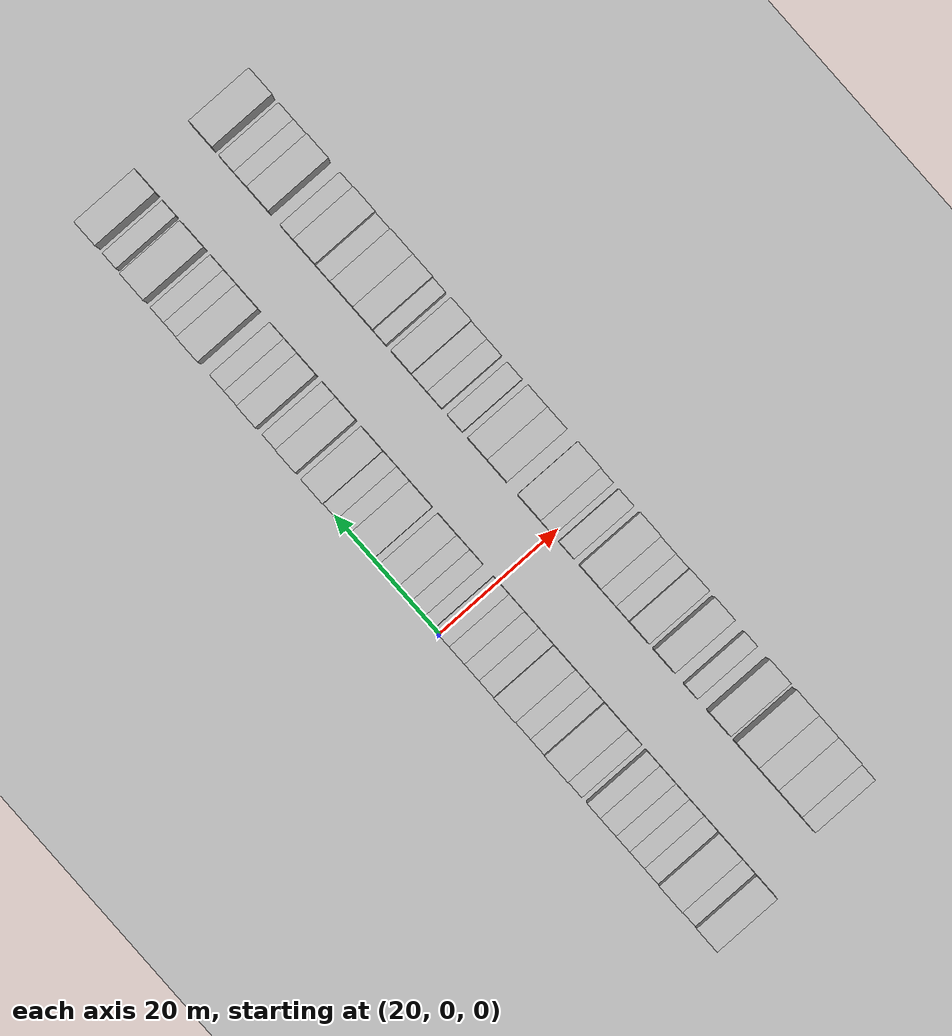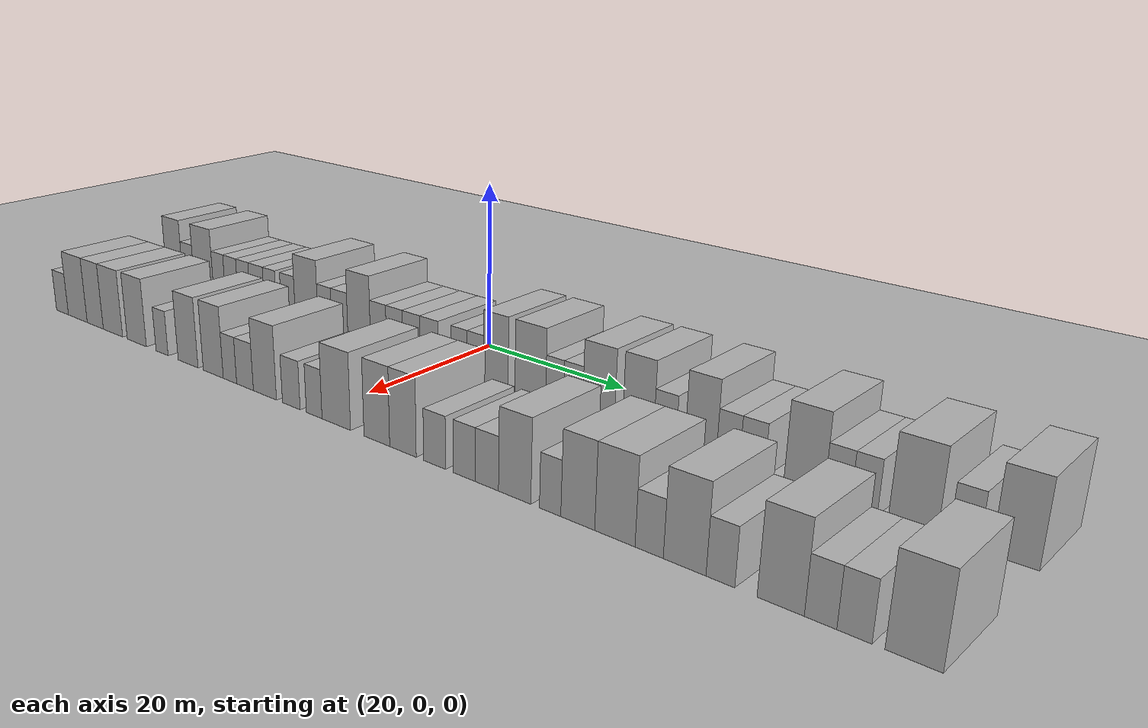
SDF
<sdf version="1.6">
 <world name="default">
  <include><name>ground_plane_1</name><uri>model://HANNAS_ground_plane</uri></include>
  <include>
   <name>ground_plane_2</name>
   <uri>model://HANNAS_ground_plane</uri>
   <pose>100 0 0  0 0 0</pose>
  </include>
  <model name="building_32">
   <static>1</static>
   <pose>25.0000 -50.4423 0 0.000000 0.000000 0.000000</pose>
   <link name="link">
    <pose>0 0 4.50 0 0 0</pose>
    <collision name="collision"><geometry><box><size>10.0000 3.9020 9.0000</size></box></geometry></collision>
    <visual name="visual">
     <cast_shadows>0</cast_shadows>
     <geometry><box><size>10.0000 3.9020 9.0000</size></box></geometry>
     <material>
      <script>
       <uri>model://HANNAS_wall/materials/scripts</uri>
       <uri>model://HANNAS_wall/materials/textures</uri>
       <name>vrc/HANNAS_wall</name>
      </script>
     </material>
    </visual>
   </link>
  </model>
  <model name="building_33">
   <static>1</static>
   <pose>25.0000 -47.1648 0 0.000000 0.000000 0.000000</pose>
   <link name="link">
    <pose>0 0 3.00 0 0 0</pose>
    <collision name="collision"><geometry><box><size>10.0000 2.6529 6.0000</size></box></geometry></collision>
    <visual name="visual">
     <cast_shadows>0</cast_shadows>
     <geometry><box><size>10.0000 2.6529 6.0000</size></box></geometry>
     <material>
      <script>
       <uri>model://HANNAS_wall/materials/scripts</uri>
       <uri>model://HANNAS_wall/materials/textures</uri>
       <name>vrc/HANNAS_wall</name>
      </script>
     </material>
    </visual>
   </link>
  </model>
  <model name="building_34">
   <static>1</static>
   <pose>25.0000 -43.6502 0 0.000000 0.000000 0.000000</pose>
   <link name="link">
    <pose>0 0 4.50 0 0 0</pose>
    <collision name="collision"><geometry><box><size>10.0000 4.3764 9.0000</size></box></geometry></collision>
    <visual name="visual">
     <cast_shadows>0</cast_shadows>
     <geometry><box><size>10.0000 4.3764 9.0000</size></box></geometry>
     <material>
      <script>
       <uri>model://HANNAS_wall/materials/scripts</uri>
       <uri>model://HANNAS_wall/materials/textures</uri>
       <name>vrc/HANNAS_wall</name>
      </script>
     </material>
    </visual>
   </link>
  </model>
  <model name="building_35">
   <static>1</static>
   <pose>25.0000 -40.1557 0 0.000000 0.000000 0.000000</pose>
   <link name="link">
    <pose>0 0 3.00 0 0 0</pose>
    <collision name="collision"><geometry><box><size>10.0000 2.6125 6.0000</size></box></geometry></collision>
    <visual name="visual">
     <cast_shadows>0</cast_shadows>
     <geometry><box><size>10.0000 2.6125 6.0000</size></box></geometry>
     <material>
      <script>
       <uri>model://HANNAS_wall/materials/scripts</uri>
       <uri>model://HANNAS_wall/materials/textures</uri>
       <name>vrc/HANNAS_wall</name>
      </script>
     </material>
    </visual>
   </link>
  </model>
  <model name="building_36">
   <static>1</static>
   <pose>25.0000 -37.4683 0 0.000000 0.000000 0.000000</pose>
   <link name="link">
    <pose>0 0 3.00 0 0 0</pose>
    <collision name="collision"><geometry><box><size>10.0000 2.7624 6.0000</size></box></geometry></collision>
    <visual name="visual">
     <cast_shadows>0</cast_shadows>
     <geometry><box><size>10.0000 2.7624 6.0000</size></box></geometry>
     <material>
      <script>
       <uri>model://HANNAS_wall/materials/scripts</uri>
       <uri>model://HANNAS_wall/materials/textures</uri>
       <name>vrc/HANNAS_wall</name>
      </script>
     </material>
    </visual>
   </link>
  </model>
  <model name="building_37">
   <static>1</static>
   <pose>25.0000 -34.7901 0 0.000000 0.000000 0.000000</pose>
   <link name="link">
    <pose>0 0 3.00 0 0 0</pose>
    <collision name="collision"><geometry><box><size>10.0000 2.5939 6.0000</size></box></geometry></collision>
    <visual name="visual">
     <cast_shadows>0</cast_shadows>
     <geometry><box><size>10.0000 2.5939 6.0000</size></box></geometry>
     <material>
      <script>
       <uri>model://HANNAS_wall/materials/scripts</uri>
       <uri>model://HANNAS_wall/materials/textures</uri>
       <name>vrc/HANNAS_wall</name>
      </script>
     </material>
    </visual>
   </link>
  </model>
  <model name="building_38">
   <static>1</static>
   <pose>25.0000 -31.9998 0 0.000000 0.000000 0.000000</pose>
   <link name="link">
    <pose>0 0 3.00 0 0 0</pose>
    <collision name="collision"><geometry><box><size>10.0000 2.9867 6.0000</size></box></geometry></collision>
    <visual name="visual">
     <cast_shadows>0</cast_shadows>
     <geometry><box><size>10.0000 2.9867 6.0000</size></box></geometry>
     <material>
      <script>
       <uri>model://HANNAS_wall/materials/scripts</uri>
       <uri>model://HANNAS_wall/materials/textures</uri>
       <name>vrc/HANNAS_wall</name>
      </script>
     </material>
    </visual>
   </link>
  </model>
  <model name="building_39">
   <static>1</static>
   <pose>25.0000 -29.2741 0 0.000000 0.000000 0.000000</pose>
   <link name="link">
    <pose>0 0 3.00 0 0 0</pose>
    <collision name="collision"><geometry><box><size>10.0000 2.4649 6.0000</size></box></geometry></collision>
    <visual name="visual">
     <cast_shadows>0</cast_shadows>
     <geometry><box><size>10.0000 2.4649 6.0000</size></box></geometry>
     <material>
      <script>
       <uri>model://HANNAS_wall/materials/scripts</uri>
       <uri>model://HANNAS_wall/materials/textures</uri>
       <name>vrc/HANNAS_wall</name>
      </script>
     </material>
    </visual>
   </link>
  </model>
  <model name="building_40">
   <static>1</static>
   <pose>25.0000 -25.6696 0 0.000000 0.000000 0.000000</pose>
   <link name="link">
    <pose>0 0 3.00 0 0 0</pose>
    <collision name="collision"><geometry><box><size>10.0000 2.7440 6.0000</size></box></geometry></collision>
    <visual name="visual">
     <cast_shadows>0</cast_shadows>
     <geometry><box><size>10.0000 2.7440 6.0000</size></box></geometry>
     <material>
      <script>
       <uri>model://HANNAS_wall/materials/scripts</uri>
       <uri>model://HANNAS_wall/materials/textures</uri>
       <name>vrc/HANNAS_wall</name>
      </script>
     </material>
    </visual>
   </link>
  </model>
  <model name="building_41">
   <static>1</static>
   <pose>25.0000 -22.1015 0 0.000000 0.000000 0.000000</pose>
   <link name="link">
    <pose>0 0 4.50 0 0 0</pose>
    <collision name="collision"><geometry><box><size>10.0000 4.3921 9.0000</size></box></geometry></collision>
    <visual name="visual">
     <cast_shadows>0</cast_shadows>
     <geometry><box><size>10.0000 4.3921 9.0000</size></box></geometry>
     <material>
      <script>
       <uri>model://HANNAS_wall/materials/scripts</uri>
       <uri>model://HANNAS_wall/materials/textures</uri>
       <name>vrc/HANNAS_wall</name>
      </script>
     </material>
    </visual>
   </link>
  </model>
  <model name="building_42">
   <static>1</static>
   <pose>25.0000 -18.6180 0 0.000000 0.000000 0.000000</pose>
   <link name="link">
    <pose>0 0 3.00 0 0 0</pose>
    <collision name="collision"><geometry><box><size>10.0000 2.5749 6.0000</size></box></geometry></collision>
    <visual name="visual">
     <cast_shadows>0</cast_shadows>
     <geometry><box><size>10.0000 2.5749 6.0000</size></box></geometry>
     <material>
      <script>
       <uri>model://HANNAS_wall/materials/scripts</uri>
       <uri>model://HANNAS_wall/materials/textures</uri>
       <name>vrc/HANNAS_wall</name>
      </script>
     </material>
    </visual>
   </link>
  </model>
  <model name="building_43">
   <static>1</static>
   <pose>25.0000 -15.8594 0 0.000000 0.000000 0.000000</pose>
   <link name="link">
    <pose>0 0 3.00 0 0 0</pose>
    <collision name="collision"><geometry><box><size>10.0000 2.9423 6.0000</size></box></geometry></collision>
    <visual name="visual">
     <cast_shadows>0</cast_shadows>
     <geometry><box><size>10.0000 2.9423 6.0000</size></box></geometry>
     <material>
      <script>
       <uri>model://HANNAS_wall/materials/scripts</uri>
       <uri>model://HANNAS_wall/materials/textures</uri>
       <name>vrc/HANNAS_wall</name>
      </script>
     </material>
    </visual>
   </link>
  </model>
  <model name="building_44">
   <static>1</static>
   <pose>25.0000 -12.3718 0 0.000000 0.000000 0.000000</pose>
   <link name="link">
    <pose>0 0 4.50 0 0 0</pose>
    <collision name="collision"><geometry><box><size>10.0000 4.0329 9.0000</size></box></geometry></collision>
    <visual name="visual">
     <cast_shadows>0</cast_shadows>
     <geometry><box><size>10.0000 4.0329 9.0000</size></box></geometry>
     <material>
      <script>
       <uri>model://HANNAS_wall/materials/scripts</uri>
       <uri>model://HANNAS_wall/materials/textures</uri>
       <name>vrc/HANNAS_wall</name>
      </script>
     </material>
    </visual>
   </link>
  </model>
  <model name="building_45">
   <static>1</static>
   <pose>25.0000 -8.9670 0 0.000000 0.000000 0.000000</pose>
   <link name="link">
    <pose>0 0 3.00 0 0 0</pose>
    <collision name="collision"><geometry><box><size>10.0000 2.7767 6.0000</size></box></geometry></collision>
    <visual name="visual">
     <cast_shadows>0</cast_shadows>
     <geometry><box><size>10.0000 2.7767 6.0000</size></box></geometry>
     <material>
      <script>
       <uri>model://HANNAS_wall/materials/scripts</uri>
       <uri>model://HANNAS_wall/materials/textures</uri>
       <name>vrc/HANNAS_wall</name>
      </script>
     </material>
    </visual>
   </link>
  </model>
  <model name="building_46">
   <static>1</static>
   <pose>25.0000 -6.2031 0 0.000000 0.000000 0.000000</pose>
   <link name="link">
    <pose>0 0 3.00 0 0 0</pose>
    <collision name="collision"><geometry><box><size>10.0000 2.7511 6.0000</size></box></geometry></collision>
    <visual name="visual">
     <cast_shadows>0</cast_shadows>
     <geometry><box><size>10.0000 2.7511 6.0000</size></box></geometry>
     <material>
      <script>
       <uri>model://HANNAS_wall/materials/scripts</uri>
       <uri>model://HANNAS_wall/materials/textures</uri>
       <name>vrc/HANNAS_wall</name>
      </script>
     </material>
    </visual>
   </link>
  </model>
  <model name="building_47">
   <static>1</static>
   <pose>25.0000 -3.3854 0 0.000000 0.000000 0.000000</pose>
   <link name="link">
    <pose>0 0 3.00 0 0 0</pose>
    <collision name="collision"><geometry><box><size>10.0000 2.8842 6.0000</size></box></geometry></collision>
    <visual name="visual">
     <cast_shadows>0</cast_shadows>
     <geometry><box><size>10.0000 2.8842 6.0000</size></box></geometry>
     <material>
      <script>
       <uri>model://HANNAS_wall/materials/scripts</uri>
       <uri>model://HANNAS_wall/materials/textures</uri>
       <name>vrc/HANNAS_wall</name>
      </script>
     </material>
    </visual>
   </link>
  </model>
  <model name="building_48">
   <static>1</static>
   <pose>25.0000 -0.4800 0 0.000000 0.000000 0.000000</pose>
   <link name="link">
    <pose>0 0 3.00 0 0 0</pose>
    <collision name="collision"><geometry><box><size>10.0000 2.9267 6.0000</size></box></geometry></collision>
    <visual name="visual">
     <cast_shadows>0</cast_shadows>
     <geometry><box><size>10.0000 2.9267 6.0000</size></box></geometry>
     <material>
      <script>
       <uri>model://HANNAS_wall/materials/scripts</uri>
       <uri>model://HANNAS_wall/materials/textures</uri>
       <name>vrc/HANNAS_wall</name>
      </script>
     </material>
    </visual>
   </link>
  </model>
  <model name="building_49">
   <static>1</static>
   <pose>25.0000 4.2375 0 0.000000 0.000000 0.000000</pose>
   <link name="link">
    <pose>0 0 3.00 0 0 0</pose>
    <collision name="collision"><geometry><box><size>10.0000 2.5082 6.0000</size></box></geometry></collision>
    <visual name="visual">
     <cast_shadows>0</cast_shadows>
     <geometry><box><size>10.0000 2.5082 6.0000</size></box></geometry>
     <material>
      <script>
       <uri>model://HANNAS_wall/materials/scripts</uri>
       <uri>model://HANNAS_wall/materials/textures</uri>
       <name>vrc/HANNAS_wall</name>
      </script>
     </material>
    </visual>
   </link>
  </model>
  <model name="building_50">
   <static>1</static>
   <pose>25.0000 6.7086 0 0.000000 0.000000 0.000000</pose>
   <link name="link">
    <pose>0 0 3.00 0 0 0</pose>
    <collision name="collision"><geometry><box><size>10.0000 2.4341 6.0000</size></box></geometry></collision>
    <visual name="visual">
     <cast_shadows>0</cast_shadows>
     <geometry><box><size>10.0000 2.4341 6.0000</size></box></geometry>
     <material>
      <script>
       <uri>model://HANNAS_wall/materials/scripts</uri>
       <uri>model://HANNAS_wall/materials/textures</uri>
       <name>vrc/HANNAS_wall</name>
      </script>
     </material>
    </visual>
   </link>
  </model>
  <model name="building_51">
   <static>1</static>
   <pose>25.0000 9.7487 0 0.000000 0.000000 0.000000</pose>
   <link name="link">
    <pose>0 0 4.50 0 0 0</pose>
    <collision name="collision"><geometry><box><size>10.0000 3.6459 9.0000</size></box></geometry></collision>
    <visual name="visual">
     <cast_shadows>0</cast_shadows>
     <geometry><box><size>10.0000 3.6459 9.0000</size></box></geometry>
     <material>
      <script>
       <uri>model://HANNAS_wall/materials/scripts</uri>
       <uri>model://HANNAS_wall/materials/textures</uri>
       <name>vrc/HANNAS_wall</name>
      </script>
     </material>
    </visual>
   </link>
  </model>
  <model name="building_52">
   <static>1</static>
   <pose>25.0000 14.7281 0 0.000000 0.000000 0.000000</pose>
   <link name="link">
    <pose>0 0 4.50 0 0 0</pose>
    <collision name="collision"><geometry><box><size>10.0000 4.3130 9.0000</size></box></geometry></collision>
    <visual name="visual">
     <cast_shadows>0</cast_shadows>
     <geometry><box><size>10.0000 4.3130 9.0000</size></box></geometry>
     <material>
      <script>
       <uri>model://HANNAS_wall/materials/scripts</uri>
       <uri>model://HANNAS_wall/materials/textures</uri>
       <name>vrc/HANNAS_wall</name>
      </script>
     </material>
    </visual>
   </link>
  </model>
  <model name="building_53">
   <static>1</static>
   <pose>25.0000 18.1000 0 0.000000 0.000000 0.000000</pose>
   <link name="link">
    <pose>0 0 3.00 0 0 0</pose>
    <collision name="collision"><geometry><box><size>10.0000 2.4307 6.0000</size></box></geometry></collision>
    <visual name="visual">
     <cast_shadows>0</cast_shadows>
     <geometry><box><size>10.0000 2.4307 6.0000</size></box></geometry>
     <material>
      <script>
       <uri>model://HANNAS_wall/materials/scripts</uri>
       <uri>model://HANNAS_wall/materials/textures</uri>
       <name>vrc/HANNAS_wall</name>
      </script>
     </material>
    </visual>
   </link>
  </model>
  <model name="building_54">
   <static>1</static>
   <pose>25.0000 20.5877 0 0.000000 0.000000 0.000000</pose>
   <link name="link">
    <pose>0 0 3.00 0 0 0</pose>
    <collision name="collision"><geometry><box><size>10.0000 2.5447 6.0000</size></box></geometry></collision>
    <visual name="visual">
     <cast_shadows>0</cast_shadows>
     <geometry><box><size>10.0000 2.5447 6.0000</size></box></geometry>
     <material>
      <script>
       <uri>model://HANNAS_wall/materials/scripts</uri>
       <uri>model://HANNAS_wall/materials/textures</uri>
       <name>vrc/HANNAS_wall</name>
      </script>
     </material>
    </visual>
   </link>
  </model>
  <model name="building_55">
   <static>1</static>
   <pose>25.0000 23.9229 0 0.000000 0.000000 0.000000</pose>
   <link name="link">
    <pose>0 0 4.50 0 0 0</pose>
    <collision name="collision"><geometry><box><size>10.0000 4.1257 9.0000</size></box></geometry></collision>
    <visual name="visual">
     <cast_shadows>0</cast_shadows>
     <geometry><box><size>10.0000 4.1257 9.0000</size></box></geometry>
     <material>
      <script>
       <uri>model://HANNAS_wall/materials/scripts</uri>
       <uri>model://HANNAS_wall/materials/textures</uri>
       <name>vrc/HANNAS_wall</name>
      </script>
     </material>
    </visual>
   </link>
  </model>
  <model name="building_56">
   <static>1</static>
   <pose>25.0000 28.8946 0 0.000000 0.000000 0.000000</pose>
   <link name="link">
    <pose>0 0 4.50 0 0 0</pose>
    <collision name="collision"><geometry><box><size>10.0000 3.8179 9.0000</size></box></geometry></collision>
    <visual name="visual">
     <cast_shadows>0</cast_shadows>
     <geometry><box><size>10.0000 3.8179 9.0000</size></box></geometry>
     <material>
      <script>
       <uri>model://HANNAS_wall/materials/scripts</uri>
       <uri>model://HANNAS_wall/materials/textures</uri>
       <name>vrc/HANNAS_wall</name>
      </script>
     </material>
    </visual>
   </link>
  </model>
  <model name="building_57">
   <static>1</static>
   <pose>25.0000 32.1456 0 0.000000 0.000000 0.000000</pose>
   <link name="link">
    <pose>0 0 3.00 0 0 0</pose>
    <collision name="collision"><geometry><box><size>10.0000 2.6839 6.0000</size></box></geometry></collision>
    <visual name="visual">
     <cast_shadows>0</cast_shadows>
     <geometry><box><size>10.0000 2.6839 6.0000</size></box></geometry>
     <material>
      <script>
       <uri>model://HANNAS_wall/materials/scripts</uri>
       <uri>model://HANNAS_wall/materials/textures</uri>
       <name>vrc/HANNAS_wall</name>
      </script>
     </material>
    </visual>
   </link>
  </model>
  <model name="building_58">
   <static>1</static>
   <pose>25.0000 36.2877 0 0.000000 0.000000 0.000000</pose>
   <link name="link">
    <pose>0 0 4.50 0 0 0</pose>
    <collision name="collision"><geometry><box><size>10.0000 3.6005 9.0000</size></box></geometry></collision>
    <visual name="visual">
     <cast_shadows>0</cast_shadows>
     <geometry><box><size>10.0000 3.6005 9.0000</size></box></geometry>
     <material>
      <script>
       <uri>model://HANNAS_wall/materials/scripts</uri>
       <uri>model://HANNAS_wall/materials/textures</uri>
       <name>vrc/HANNAS_wall</name>
      </script>
     </material>
    </visual>
   </link>
  </model>
  <model name="building_59">
   <static>1</static>
   <pose>25.0000 39.3707 0 0.000000 0.000000 0.000000</pose>
   <link name="link">
    <pose>0 0 3.00 0 0 0</pose>
    <collision name="collision"><geometry><box><size>10.0000 2.5655 6.0000</size></box></geometry></collision>
    <visual name="visual">
     <cast_shadows>0</cast_shadows>
     <geometry><box><size>10.0000 2.5655 6.0000</size></box></geometry>
     <material>
      <script>
       <uri>model://HANNAS_wall/materials/scripts</uri>
       <uri>model://HANNAS_wall/materials/textures</uri>
       <name>vrc/HANNAS_wall</name>
      </script>
     </material>
    </visual>
   </link>
  </model>
  <model name="building_60">
   <static>1</static>
   <pose>25.0000 42.0152 0 0.000000 0.000000 0.000000</pose>
   <link name="link">
    <pose>0 0 3.00 0 0 0</pose>
    <collision name="collision"><geometry><box><size>10.0000 2.7235 6.0000</size></box></geometry></collision>
    <visual name="visual">
     <cast_shadows>0</cast_shadows>
     <geometry><box><size>10.0000 2.7235 6.0000</size></box></geometry>
     <material>
      <script>
       <uri>model://HANNAS_wall/materials/scripts</uri>
       <uri>model://HANNAS_wall/materials/textures</uri>
       <name>vrc/HANNAS_wall</name>
      </script>
     </material>
    </visual>
   </link>
  </model>
  <model name="building_61">
   <static>1</static>
   <pose>25.0000 47.4285 0 0.000000 0.000000 0.000000</pose>
   <link name="link">
    <pose>0 0 4.50 0 0 0</pose>
    <collision name="collision"><geometry><box><size>10.0000 4.1031 9.0000</size></box></geometry></collision>
    <visual name="visual">
     <cast_shadows>0</cast_shadows>
     <geometry><box><size>10.0000 4.1031 9.0000</size></box></geometry>
     <material>
      <script>
       <uri>model://HANNAS_wall/materials/scripts</uri>
       <uri>model://HANNAS_wall/materials/textures</uri>
       <name>vrc/HANNAS_wall</name>
      </script>
     </material>
    </visual>
   </link>
  </model>
  <model name="building_62">
   <static>1</static>
   <pose>25.0000 50.7780 0 0.000000 0.000000 0.000000</pose>
   <link name="link">
    <pose>0 0 3.00 0 0 0</pose>
    <collision name="collision"><geometry><box><size>10.0000 2.5958 6.0000</size></box></geometry></collision>
    <visual name="visual">
     <cast_shadows>0</cast_shadows>
     <geometry><box><size>10.0000 2.5958 6.0000</size></box></geometry>
     <material>
      <script>
       <uri>model://HANNAS_wall/materials/scripts</uri>
       <uri>model://HANNAS_wall/materials/textures</uri>
       <name>vrc/HANNAS_wall</name>
      </script>
     </material>
    </visual>
   </link>
  </model>
  <model name="building_63">
   <static>1</static>
   <pose>25.0000 53.3449 0 0.000000 0.000000 0.000000</pose>
   <link name="link">
    <pose>0 0 3.00 0 0 0</pose>
    <collision name="collision"><geometry><box><size>10.0000 2.5381 6.0000</size></box></geometry></collision>
    <visual name="visual">
     <cast_shadows>0</cast_shadows>
     <geometry><box><size>10.0000 2.5381 6.0000</size></box></geometry>
     <material>
      <script>
       <uri>model://HANNAS_wall/materials/scripts</uri>
       <uri>model://HANNAS_wall/materials/textures</uri>
       <name>vrc/HANNAS_wall</name>
      </script>
     </material>
    </visual>
   </link>
  </model>
  <model name="building_64">
   <static>1</static>
   <pose>25.0000 57.8412 0 0.000000 0.000000 0.000000</pose>
   <link name="link">
    <pose>0 0 4.50 0 0 0</pose>
    <collision name="collision"><geometry><box><size>10.0000 4.4544 9.0000</size></box></geometry></collision>
    <visual name="visual">
     <cast_shadows>0</cast_shadows>
     <geometry><box><size>10.0000 4.4544 9.0000</size></box></geometry>
     <material>
      <script>
       <uri>model://HANNAS_wall/materials/scripts</uri>
       <uri>model://HANNAS_wall/materials/textures</uri>
       <name>vrc/HANNAS_wall</name>
      </script>
     </material>
    </visual>
   </link>
  </model>
  <model name="building_65">
   <static>1</static>
   <pose>25.0000 62.3684 0 0.000000 0.000000 0.000000</pose>
   <link name="link">
    <pose>0 0 3.00 0 0 0</pose>
    <collision name="collision"><geometry><box><size>10.0000 2.6001 6.0000</size></box></geometry></collision>
    <visual name="visual">
     <cast_shadows>0</cast_shadows>
     <geometry><box><size>10.0000 2.6001 6.0000</size></box></geometry>
     <material>
      <script>
       <uri>model://HANNAS_wall/materials/scripts</uri>
       <uri>model://HANNAS_wall/materials/textures</uri>
       <name>vrc/HANNAS_wall</name>
      </script>
     </material>
    </visual>
   </link>
  </model>
  <model name="building_66">
   <static>1</static>
   <pose>25.0000 66.6448 0 0.000000 0.000000 0.000000</pose>
   <link name="link">
    <pose>0 0 4.50 0 0 0</pose>
    <collision name="collision"><geometry><box><size>10.0000 3.9526 9.0000</size></box></geometry></collision>
    <visual name="visual">
     <cast_shadows>0</cast_shadows>
     <geometry><box><size>10.0000 3.9526 9.0000</size></box></geometry>
     <material>
      <script>
       <uri>model://HANNAS_wall/materials/scripts</uri>
       <uri>model://HANNAS_wall/materials/textures</uri>
       <name>vrc/HANNAS_wall</name>
      </script>
     </material>
    </visual>
   </link>
  </model>
  <model name="building_135">
   <static>1</static>
   <pose>44.0000 -48.2255 0 0.000000 0.000000 0.000000</pose>
   <link name="link">
    <pose>0 0 3.00 0 0 0</pose>
    <collision name="collision"><geometry><box><size>10.0000 2.8628 6.0000</size></box></geometry></collision>
    <visual name="visual">
     <cast_shadows>0</cast_shadows>
     <geometry><box><size>10.0000 2.8628 6.0000</size></box></geometry>
     <material>
      <script>
       <uri>model://HANNAS_wall/materials/scripts</uri>
       <uri>model://HANNAS_wall/materials/textures</uri>
       <name>vrc/HANNAS_wall</name>
      </script>
     </material>
    </visual>
   </link>
  </model>
  <model name="building_136">
   <static>1</static>
   <pose>44.0000 -44.5847 0 0.000000 0.000000 0.000000</pose>
   <link name="link">
    <pose>0 0 4.50 0 0 0</pose>
    <collision name="collision"><geometry><box><size>10.0000 4.4187 9.0000</size></box></geometry></collision>
    <visual name="visual">
     <cast_shadows>0</cast_shadows>
     <geometry><box><size>10.0000 4.4187 9.0000</size></box></geometry>
     <material>
      <script>
       <uri>model://HANNAS_wall/materials/scripts</uri>
       <uri>model://HANNAS_wall/materials/textures</uri>
       <name>vrc/HANNAS_wall</name>
      </script>
     </material>
    </visual>
   </link>
  </model>
  <model name="building_137">
   <static>1</static>
   <pose>44.0000 -40.5375 0 0.000000 0.000000 0.000000</pose>
   <link name="link">
    <pose>0 0 4.50 0 0 0</pose>
    <collision name="collision"><geometry><box><size>10.0000 3.6757 9.0000</size></box></geometry></collision>
    <visual name="visual">
     <cast_shadows>0</cast_shadows>
     <geometry><box><size>10.0000 3.6757 9.0000</size></box></geometry>
     <material>
      <script>
       <uri>model://HANNAS_wall/materials/scripts</uri>
       <uri>model://HANNAS_wall/materials/textures</uri>
       <name>vrc/HANNAS_wall</name>
      </script>
     </material>
    </visual>
   </link>
  </model>
  <model name="building_138">
   <static>1</static>
   <pose>44.0000 -36.5633 0 0.000000 0.000000 0.000000</pose>
   <link name="link">
    <pose>0 0 4.50 0 0 0</pose>
    <collision name="collision"><geometry><box><size>10.0000 4.2727 9.0000</size></box></geometry></collision>
    <visual name="visual">
     <cast_shadows>0</cast_shadows>
     <geometry><box><size>10.0000 4.2727 9.0000</size></box></geometry>
     <material>
      <script>
       <uri>model://HANNAS_wall/materials/scripts</uri>
       <uri>model://HANNAS_wall/materials/textures</uri>
       <name>vrc/HANNAS_wall</name>
      </script>
     </material>
    </visual>
   </link>
  </model>
  <model name="building_139">
   <static>1</static>
   <pose>44.0000 -31.4042 0 0.000000 0.000000 0.000000</pose>
   <link name="link">
    <pose>0 0 4.50 0 0 0</pose>
    <collision name="collision"><geometry><box><size>10.0000 4.0457 9.0000</size></box></geometry></collision>
    <visual name="visual">
     <cast_shadows>0</cast_shadows>
     <geometry><box><size>10.0000 4.0457 9.0000</size></box></geometry>
     <material>
      <script>
       <uri>model://HANNAS_wall/materials/scripts</uri>
       <uri>model://HANNAS_wall/materials/textures</uri>
       <name>vrc/HANNAS_wall</name>
      </script>
     </material>
    </visual>
   </link>
  </model>
  <model name="building_140">
   <static>1</static>
   <pose>44.0000 -26.1586 0 0.000000 0.000000 0.000000</pose>
   <link name="link">
    <pose>0 0 3.00 0 0 0</pose>
    <collision name="collision"><geometry><box><size>10.0000 2.4454 6.0000</size></box></geometry></collision>
    <visual name="visual">
     <cast_shadows>0</cast_shadows>
     <geometry><box><size>10.0000 2.4454 6.0000</size></box></geometry>
     <material>
      <script>
       <uri>model://HANNAS_wall/materials/scripts</uri>
       <uri>model://HANNAS_wall/materials/textures</uri>
       <name>vrc/HANNAS_wall</name>
      </script>
     </material>
    </visual>
   </link>
  </model>
  <model name="building_141">
   <static>1</static>
   <pose>44.0000 -21.0074 0 0.000000 0.000000 0.000000</pose>
   <link name="link">
    <pose>0 0 4.50 0 0 0</pose>
    <collision name="collision"><geometry><box><size>10.0000 3.8571 9.0000</size></box></geometry></collision>
    <visual name="visual">
     <cast_shadows>0</cast_shadows>
     <geometry><box><size>10.0000 3.8571 9.0000</size></box></geometry>
     <material>
      <script>
       <uri>model://HANNAS_wall/materials/scripts</uri>
       <uri>model://HANNAS_wall/materials/textures</uri>
       <name>vrc/HANNAS_wall</name>
      </script>
     </material>
    </visual>
   </link>
  </model>
  <model name="building_142">
   <static>1</static>
   <pose>44.0000 -16.2235 0 0.000000 0.000000 0.000000</pose>
   <link name="link">
    <pose>0 0 4.50 0 0 0</pose>
    <collision name="collision"><geometry><box><size>10.0000 3.7107 9.0000</size></box></geometry></collision>
    <visual name="visual">
     <cast_shadows>0</cast_shadows>
     <geometry><box><size>10.0000 3.7107 9.0000</size></box></geometry>
     <material>
      <script>
       <uri>model://HANNAS_wall/materials/scripts</uri>
       <uri>model://HANNAS_wall/materials/textures</uri>
       <name>vrc/HANNAS_wall</name>
      </script>
     </material>
    </visual>
   </link>
  </model>
  <model name="building_143">
   <static>1</static>
   <pose>44.0000 -13.1582 0 0.000000 0.000000 0.000000</pose>
   <link name="link">
    <pose>0 0 3.00 0 0 0</pose>
    <collision name="collision"><geometry><box><size>10.0000 2.4199 6.0000</size></box></geometry></collision>
    <visual name="visual">
     <cast_shadows>0</cast_shadows>
     <geometry><box><size>10.0000 2.4199 6.0000</size></box></geometry>
     <material>
      <script>
       <uri>model://HANNAS_wall/materials/scripts</uri>
       <uri>model://HANNAS_wall/materials/textures</uri>
       <name>vrc/HANNAS_wall</name>
      </script>
     </material>
    </visual>
   </link>
  </model>
  <model name="building_144">
   <static>1</static>
   <pose>44.0000 -10.4704 0 0.000000 0.000000 0.000000</pose>
   <link name="link">
    <pose>0 0 3.00 0 0 0</pose>
    <collision name="collision"><geometry><box><size>10.0000 2.9559 6.0000</size></box></geometry></collision>
    <visual name="visual">
     <cast_shadows>0</cast_shadows>
     <geometry><box><size>10.0000 2.9559 6.0000</size></box></geometry>
     <material>
      <script>
       <uri>model://HANNAS_wall/materials/scripts</uri>
       <uri>model://HANNAS_wall/materials/textures</uri>
       <name>vrc/HANNAS_wall</name>
      </script>
     </material>
    </visual>
   </link>
  </model>
  <model name="building_145">
   <static>1</static>
   <pose>44.0000 -7.0154 0 0.000000 0.000000 0.000000</pose>
   <link name="link">
    <pose>0 0 4.50 0 0 0</pose>
    <collision name="collision"><geometry><box><size>10.0000 3.9540 9.0000</size></box></geometry></collision>
    <visual name="visual">
     <cast_shadows>0</cast_shadows>
     <geometry><box><size>10.0000 3.9540 9.0000</size></box></geometry>
     <material>
      <script>
       <uri>model://HANNAS_wall/materials/scripts</uri>
       <uri>model://HANNAS_wall/materials/textures</uri>
       <name>vrc/HANNAS_wall</name>
      </script>
     </material>
    </visual>
   </link>
  </model>
  <model name="building_146">
   <static>1</static>
   <pose>44.0000 -2.5890 0 0.000000 0.000000 0.000000</pose>
   <link name="link">
    <pose>0 0 3.00 0 0 0</pose>
    <collision name="collision"><geometry><box><size>10.0000 2.8988 6.0000</size></box></geometry></collision>
    <visual name="visual">
     <cast_shadows>0</cast_shadows>
     <geometry><box><size>10.0000 2.8988 6.0000</size></box></geometry>
     <material>
      <script>
       <uri>model://HANNAS_wall/materials/scripts</uri>
       <uri>model://HANNAS_wall/materials/textures</uri>
       <name>vrc/HANNAS_wall</name>
      </script>
     </material>
    </visual>
   </link>
  </model>
  <model name="building_147">
   <static>1</static>
   <pose>44.0000 1.1057 0 0.000000 0.000000 0.000000</pose>
   <link name="link">
    <pose>0 0 3.00 0 0 0</pose>
    <collision name="collision"><geometry><box><size>10.0000 2.4906 6.0000</size></box></geometry></collision>
    <visual name="visual">
     <cast_shadows>0</cast_shadows>
     <geometry><box><size>10.0000 2.4906 6.0000</size></box></geometry>
     <material>
      <script>
       <uri>model://HANNAS_wall/materials/scripts</uri>
       <uri>model://HANNAS_wall/materials/textures</uri>
       <name>vrc/HANNAS_wall</name>
      </script>
     </material>
    </visual>
   </link>
  </model>
  <model name="building_148">
   <static>1</static>
   <pose>44.0000 4.5351 0 0.000000 0.000000 0.000000</pose>
   <link name="link">
    <pose>0 0 4.50 0 0 0</pose>
    <collision name="collision"><geometry><box><size>10.0000 4.3683 9.0000</size></box></geometry></collision>
    <visual name="visual">
     <cast_shadows>0</cast_shadows>
     <geometry><box><size>10.0000 4.3683 9.0000</size></box></geometry>
     <material>
      <script>
       <uri>model://HANNAS_wall/materials/scripts</uri>
       <uri>model://HANNAS_wall/materials/textures</uri>
       <name>vrc/HANNAS_wall</name>
      </script>
     </material>
    </visual>
   </link>
  </model>
  <model name="building_149">
   <static>1</static>
   <pose>44.0000 10.5768 0 0.000000 0.000000 0.000000</pose>
   <link name="link">
    <pose>0 0 4.50 0 0 0</pose>
    <collision name="collision"><geometry><box><size>10.0000 3.7150 9.0000</size></box></geometry></collision>
    <visual name="visual">
     <cast_shadows>0</cast_shadows>
     <geometry><box><size>10.0000 3.7150 9.0000</size></box></geometry>
     <material>
      <script>
       <uri>model://HANNAS_wall/materials/scripts</uri>
       <uri>model://HANNAS_wall/materials/textures</uri>
       <name>vrc/HANNAS_wall</name>
      </script>
     </material>
    </visual>
   </link>
  </model>
  <model name="building_150">
   <static>1</static>
   <pose>44.0000 14.2815 0 0.000000 0.000000 0.000000</pose>
   <link name="link">
    <pose>0 0 4.50 0 0 0</pose>
    <collision name="collision"><geometry><box><size>10.0000 3.6945 9.0000</size></box></geometry></collision>
    <visual name="visual">
     <cast_shadows>0</cast_shadows>
     <geometry><box><size>10.0000 3.6945 9.0000</size></box></geometry>
     <material>
      <script>
       <uri>model://HANNAS_wall/materials/scripts</uri>
       <uri>model://HANNAS_wall/materials/textures</uri>
       <name>vrc/HANNAS_wall</name>
      </script>
     </material>
    </visual>
   </link>
  </model>
  <model name="building_151">
   <static>1</static>
   <pose>44.0000 18.5840 0 0.000000 0.000000 0.000000</pose>
   <link name="link">
    <pose>0 0 3.00 0 0 0</pose>
    <collision name="collision"><geometry><box><size>10.0000 2.9106 6.0000</size></box></geometry></collision>
    <visual name="visual">
     <cast_shadows>0</cast_shadows>
     <geometry><box><size>10.0000 2.9106 6.0000</size></box></geometry>
     <material>
      <script>
       <uri>model://HANNAS_wall/materials/scripts</uri>
       <uri>model://HANNAS_wall/materials/textures</uri>
       <name>vrc/HANNAS_wall</name>
      </script>
     </material>
    </visual>
   </link>
  </model>
  <model name="building_152">
   <static>1</static>
   <pose>44.0000 22.4365 0 0.000000 0.000000 0.000000</pose>
   <link name="link">
    <pose>0 0 3.00 0 0 0</pose>
    <collision name="collision"><geometry><box><size>10.0000 2.7944 6.0000</size></box></geometry></collision>
    <visual name="visual">
     <cast_shadows>0</cast_shadows>
     <geometry><box><size>10.0000 2.7944 6.0000</size></box></geometry>
     <material>
      <script>
       <uri>model://HANNAS_wall/materials/scripts</uri>
       <uri>model://HANNAS_wall/materials/textures</uri>
       <name>vrc/HANNAS_wall</name>
      </script>
     </material>
    </visual>
   </link>
  </model>
  <model name="building_153">
   <static>1</static>
   <pose>44.0000 25.2863 0 0.000000 0.000000 0.000000</pose>
   <link name="link">
    <pose>0 0 3.00 0 0 0</pose>
    <collision name="collision"><geometry><box><size>10.0000 2.9052 6.0000</size></box></geometry></collision>
    <visual name="visual">
     <cast_shadows>0</cast_shadows>
     <geometry><box><size>10.0000 2.9052 6.0000</size></box></geometry>
     <material>
      <script>
       <uri>model://HANNAS_wall/materials/scripts</uri>
       <uri>model://HANNAS_wall/materials/textures</uri>
       <name>vrc/HANNAS_wall</name>
      </script>
     </material>
    </visual>
   </link>
  </model>
  <model name="building_154">
   <static>1</static>
   <pose>44.0000 28.6700 0 0.000000 0.000000 0.000000</pose>
   <link name="link">
    <pose>0 0 4.50 0 0 0</pose>
    <collision name="collision"><geometry><box><size>10.0000 3.8621 9.0000</size></box></geometry></collision>
    <visual name="visual">
     <cast_shadows>0</cast_shadows>
     <geometry><box><size>10.0000 3.8621 9.0000</size></box></geometry>
     <material>
      <script>
       <uri>model://HANNAS_wall/materials/scripts</uri>
       <uri>model://HANNAS_wall/materials/textures</uri>
       <name>vrc/HANNAS_wall</name>
      </script>
     </material>
    </visual>
   </link>
  </model>
  <model name="building_155">
   <static>1</static>
   <pose>44.0000 32.8173 0 0.000000 0.000000 0.000000</pose>
   <link name="link">
    <pose>0 0 3.00 0 0 0</pose>
    <collision name="collision"><geometry><box><size>10.0000 2.4324 6.0000</size></box></geometry></collision>
    <visual name="visual">
     <cast_shadows>0</cast_shadows>
     <geometry><box><size>10.0000 2.4324 6.0000</size></box></geometry>
     <material>
      <script>
       <uri>model://HANNAS_wall/materials/scripts</uri>
       <uri>model://HANNAS_wall/materials/textures</uri>
       <name>vrc/HANNAS_wall</name>
      </script>
     </material>
    </visual>
   </link>
  </model>
  <model name="building_156">
   <static>1</static>
   <pose>44.0000 35.9000 0 0.000000 0.000000 0.000000</pose>
   <link name="link">
    <pose>0 0 4.50 0 0 0</pose>
    <collision name="collision"><geometry><box><size>10.0000 3.7330 9.0000</size></box></geometry></collision>
    <visual name="visual">
     <cast_shadows>0</cast_shadows>
     <geometry><box><size>10.0000 3.7330 9.0000</size></box></geometry>
     <material>
      <script>
       <uri>model://HANNAS_wall/materials/scripts</uri>
       <uri>model://HANNAS_wall/materials/textures</uri>
       <name>vrc/HANNAS_wall</name>
      </script>
     </material>
    </visual>
   </link>
  </model>
  <model name="building_157">
   <static>1</static>
   <pose>44.0000 39.8864 0 0.000000 0.000000 0.000000</pose>
   <link name="link">
    <pose>0 0 4.50 0 0 0</pose>
    <collision name="collision"><geometry><box><size>10.0000 4.2398 9.0000</size></box></geometry></collision>
    <visual name="visual">
     <cast_shadows>0</cast_shadows>
     <geometry><box><size>10.0000 4.2398 9.0000</size></box></geometry>
     <material>
      <script>
       <uri>model://HANNAS_wall/materials/scripts</uri>
       <uri>model://HANNAS_wall/materials/textures</uri>
       <name>vrc/HANNAS_wall</name>
      </script>
     </material>
    </visual>
   </link>
  </model>
  <model name="building_158">
   <static>1</static>
   <pose>44.0000 43.4285 0 0.000000 0.000000 0.000000</pose>
   <link name="link">
    <pose>0 0 3.00 0 0 0</pose>
    <collision name="collision"><geometry><box><size>10.0000 2.8443 6.0000</size></box></geometry></collision>
    <visual name="visual">
     <cast_shadows>0</cast_shadows>
     <geometry><box><size>10.0000 2.8443 6.0000</size></box></geometry>
     <material>
      <script>
       <uri>model://HANNAS_wall/materials/scripts</uri>
       <uri>model://HANNAS_wall/materials/textures</uri>
       <name>vrc/HANNAS_wall</name>
      </script>
     </material>
    </visual>
   </link>
  </model>
  <model name="building_159">
   <static>1</static>
   <pose>44.0000 46.9150 0 0.000000 0.000000 0.000000</pose>
   <link name="link">
    <pose>0 0 4.50 0 0 0</pose>
    <collision name="collision"><geometry><box><size>10.0000 4.1287 9.0000</size></box></geometry></collision>
    <visual name="visual">
     <cast_shadows>0</cast_shadows>
     <geometry><box><size>10.0000 4.1287 9.0000</size></box></geometry>
     <material>
      <script>
       <uri>model://HANNAS_wall/materials/scripts</uri>
       <uri>model://HANNAS_wall/materials/textures</uri>
       <name>vrc/HANNAS_wall</name>
      </script>
     </material>
    </visual>
   </link>
  </model>
  <model name="building_160">
   <static>1</static>
   <pose>44.0000 50.3120 0 0.000000 0.000000 0.000000</pose>
   <link name="link">
    <pose>0 0 3.00 0 0 0</pose>
    <collision name="collision"><geometry><box><size>10.0000 2.6654 6.0000</size></box></geometry></collision>
    <visual name="visual">
     <cast_shadows>0</cast_shadows>
     <geometry><box><size>10.0000 2.6654 6.0000</size></box></geometry>
     <material>
      <script>
       <uri>model://HANNAS_wall/materials/scripts</uri>
       <uri>model://HANNAS_wall/materials/textures</uri>
       <name>vrc/HANNAS_wall</name>
      </script>
     </material>
    </visual>
   </link>
  </model>
  <model name="building_161">
   <static>1</static>
   <pose>44.0000 55.6885 0 0.000000 0.000000 0.000000</pose>
   <link name="link">
    <pose>0 0 4.50 0 0 0</pose>
    <collision name="collision"><geometry><box><size>10.0000 4.0875 9.0000</size></box></geometry></collision>
    <visual name="visual">
     <cast_shadows>0</cast_shadows>
     <geometry><box><size>10.0000 4.0875 9.0000</size></box></geometry>
     <material>
      <script>
       <uri>model://HANNAS_wall/materials/scripts</uri>
       <uri>model://HANNAS_wall/materials/textures</uri>
       <name>vrc/HANNAS_wall</name>
      </script>
     </material>
    </visual>
   </link>
  </model>
  <model name="building_162">
   <static>1</static>
   <pose>44.0000 59.0759 0 0.000000 0.000000 0.000000</pose>
   <link name="link">
    <pose>0 0 3.00 0 0 0</pose>
    <collision name="collision"><geometry><box><size>10.0000 2.6874 6.0000</size></box></geometry></collision>
    <visual name="visual">
     <cast_shadows>0</cast_shadows>
     <geometry><box><size>10.0000 2.6874 6.0000</size></box></geometry>
     <material>
      <script>
       <uri>model://HANNAS_wall/materials/scripts</uri>
       <uri>model://HANNAS_wall/materials/textures</uri>
       <name>vrc/HANNAS_wall</name>
      </script>
     </material>
    </visual>
   </link>
  </model>
  <model name="building_163">
   <static>1</static>
   <pose>44.0000 61.8239 0 0.000000 0.000000 0.000000</pose>
   <link name="link">
    <pose>0 0 3.00 0 0 0</pose>
    <collision name="collision"><geometry><box><size>10.0000 2.8087 6.0000</size></box></geometry></collision>
    <visual name="visual">
     <cast_shadows>0</cast_shadows>
     <geometry><box><size>10.0000 2.8087 6.0000</size></box></geometry>
     <material>
      <script>
       <uri>model://HANNAS_wall/materials/scripts</uri>
       <uri>model://HANNAS_wall/materials/textures</uri>
       <name>vrc/HANNAS_wall</name>
      </script>
     </material>
    </visual>
   </link>
  </model>
  <model name="building_164">
   <static>1</static>
   <pose>44.0000 66.4216 0 0.000000 0.000000 0.000000</pose>
   <link name="link">
    <pose>0 0 4.50 0 0 0</pose>
    <collision name="collision"><geometry><box><size>10.0000 4.3867 9.0000</size></box></geometry></collision>
    <visual name="visual">
     <cast_shadows>0</cast_shadows>
     <geometry><box><size>10.0000 4.3867 9.0000</size></box></geometry>
     <material>
      <script>
       <uri>model://HANNAS_wall/materials/scripts</uri>
       <uri>model://HANNAS_wall/materials/textures</uri>
       <name>vrc/HANNAS_wall</name>
      </script>
     </material>
    </visual>
   </link>
  </model>
 </world>
</sdf>
